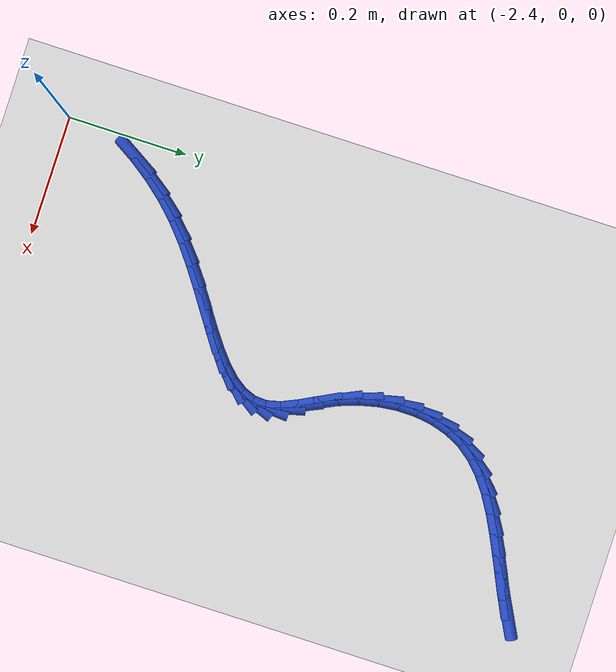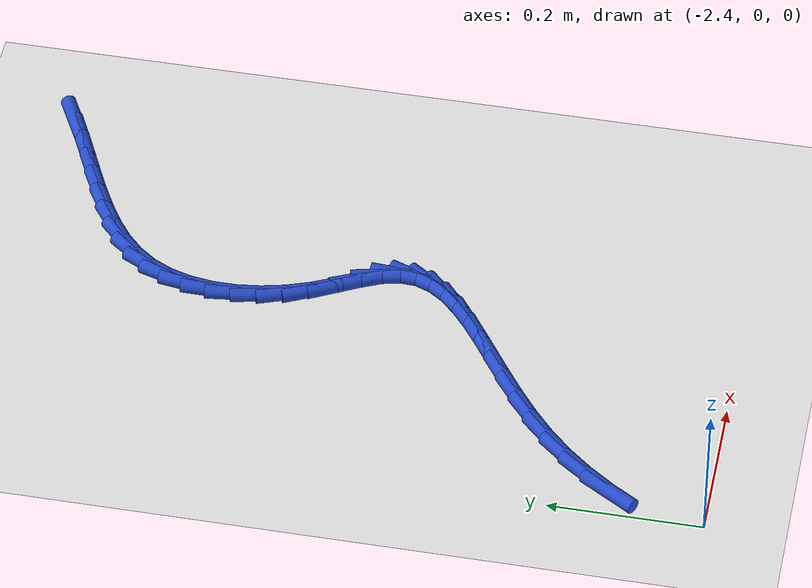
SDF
<sdf version="1.6">
 <world name="default">
  <model name="ground_plane">
   <static>1</static>
   <link name="link">
    <collision name="collision">
     <geometry><plane><normal>0 0 1</normal><size>100 100</size></plane></geometry>
     <surface><friction><ode><mu>100</mu><mu2>50</mu2></ode></friction></surface>
    </collision>
    <visual name="visual">
     <cast_shadows>0</cast_shadows>
     <geometry><plane><normal>0 0 1</normal><size>100 100</size></plane></geometry>
     <material>
      <script><uri>file://media/materials/scripts/gazebo.material</uri><name>Gazebo/WhiteGlow</name></script>
     </material>
    </visual>
   </link>
  </model>
  <model name="line">
   <link name="link_111">
    <pose>-1.8490334474256829 0.9260834770251191 0.01 0 1.57 0.48151150266954423</pose>
    <collision name="collision">
     <geometry><cylinder><radius>0.01</radius><length>0.08</length></cylinder></geometry>
    </collision>
    <visual name="visual">
     <material>
      <script><name>Gazebo/Blue</name><uri>file://media/materials/scripts/gazebo.material</uri></script>
     </material>
     <geometry><cylinder><radius>0.01</radius><length>0.08</length></cylinder></geometry>
    </visual>
   </link>
   <link name="link_112">
    <pose>-1.8782226999658391 0.9108311137869755 0.01 0 1.57 0.4482046436294923</pose>
    <collision name="collision">
     <geometry><cylinder><radius>0.01</radius><length>0.08</length></cylinder></geometry>
    </collision>
    <visual name="visual">
     <material>
      <script><name>Gazebo/Blue</name><uri>file://media/materials/scripts/gazebo.material</uri></script>
     </material>
     <geometry><cylinder><radius>0.01</radius><length>0.08</length></cylinder></geometry>
    </visual>
   </link>
   <link name="link_113">
    <pose>-1.908630862797491 0.8962095708768517 0.01 0 1.57 0.43828682693135596</pose>
    <collision name="collision">
     <geometry><cylinder><radius>0.01</radius><length>0.08</length></cylinder></geometry>
    </collision>
    <visual name="visual">
     <material>
      <script><name>Gazebo/Blue</name><uri>file://media/materials/scripts/gazebo.material</uri></script>
     </material>
     <geometry><cylinder><radius>0.01</radius><length>0.08</length></cylinder></geometry>
    </visual>
   </link>
   <link name="link_114">
    <pose>-1.9395008963547484 0.8817411151971165 0.01 0 1.57 0.4506298459979865</pose>
    <collision name="collision">
     <geometry><cylinder><radius>0.01</radius><length>0.08</length></cylinder></geometry>
    </collision>
    <visual name="visual">
     <material>
      <script><name>Gazebo/Blue</name><uri>file://media/materials/scripts/gazebo.material</uri></script>
     </material>
     <geometry><cylinder><radius>0.01</radius><length>0.08</length></cylinder></geometry>
    </visual>
   </link>
   <link name="link_115">
    <pose>-1.9700757610717194 0.8669480136501375 0.01 0 1.57 0.4859949999280427</pose>
    <collision name="collision">
     <geometry><cylinder><radius>0.01</radius><length>0.08</length></cylinder></geometry>
    </collision>
    <visual name="visual">
     <material>
      <script><name>Gazebo/Blue</name><uri>file://media/materials/scripts/gazebo.material</uri></script>
     </material>
     <geometry><cylinder><radius>0.01</radius><length>0.08</length></cylinder></geometry>
    </visual>
   </link>
   <link name="link_116">
    <pose>-1.999598417382515 0.8513525331382827 0.01 0 1.57 0.5469615754901251</pose>
    <collision name="collision">
     <geometry><cylinder><radius>0.01</radius><length>0.08</length></cylinder></geometry>
    </collision>
    <visual name="visual">
     <material>
      <script><name>Gazebo/Blue</name><uri>file://media/materials/scripts/gazebo.material</uri></script>
     </material>
     <geometry><cylinder><radius>0.01</radius><length>0.08</length></cylinder></geometry>
    </visual>
   </link>
   <link name="link_117">
    <pose>-2.027311825721245 0.8344769405639201 0.01 0 1.57 0.6377013243452267</pose>
    <collision name="collision">
     <geometry><cylinder><radius>0.01</radius><length>0.08</length></cylinder></geometry>
    </collision>
    <visual name="visual">
     <material>
      <script><name>Gazebo/Blue</name><uri>file://media/materials/scripts/gazebo.material</uri></script>
     </material>
     <geometry><cylinder><radius>0.01</radius><length>0.08</length></cylinder></geometry>
    </visual>
   </link>
   <link name="link_118">
    <pose>-2.0524589465220178 0.815843502829418 0.01 0 1.57 0.7630379911833638</pose>
    <collision name="collision">
     <geometry><cylinder><radius>0.01</radius><length>0.08</length></cylinder></geometry>
    </collision>
    <visual name="visual">
     <material>
      <script><name>Gazebo/Blue</name><uri>file://media/materials/scripts/gazebo.material</uri></script>
     </material>
     <geometry><cylinder><radius>0.01</radius><length>0.08</length></cylinder></geometry>
    </visual>
   </link>
   <link name="link_119">
    <pose>-2.0742827402189428 0.7949744868371441 0.01 0 1.57 0.9257145189324637</pose>
    <collision name="collision">
     <geometry><cylinder><radius>0.01</radius><length>0.08</length></cylinder></geometry>
    </collision>
    <visual name="visual">
     <material>
      <script><name>Gazebo/Blue</name><uri>file://media/materials/scripts/gazebo.material</uri></script>
     </material>
     <geometry><cylinder><radius>0.01</radius><length>0.08</length></cylinder></geometry>
    </visual>
   </link>
   <link name="link_120">
    <pose>-2.092027031173962 0.7713931806111358 0.01 0 1.57 1.1094860443855221</pose>
    <collision name="collision">
     <geometry><cylinder><radius>0.01</radius><length>0.08</length></cylinder></geometry>
    </collision>
    <visual name="visual">
     <material>
      <script><name>Gazebo/Blue</name><uri>file://media/materials/scripts/gazebo.material</uri></script>
     </material>
     <geometry><cylinder><radius>0.01</radius><length>0.08</length></cylinder></geometry>
    </visual>
   </link>
   <link name="link_121">
    <pose>-2.105186612143622 0.7449195048994814 0.01 0 1.57 1.278851653986016</pose>
    <collision name="collision">
     <geometry><cylinder><radius>0.01</radius><length>0.08</length></cylinder></geometry>
    </collision>
    <visual name="visual">
     <material>
      <script><name>Gazebo/Blue</name><uri>file://media/materials/scripts/gazebo.material</uri></script>
     </material>
     <geometry><cylinder><radius>0.01</radius><length>0.08</length></cylinder></geometry>
    </visual>
   </link>
   <link name="link_122">
    <pose>-2.1138538847615154 0.7160797257627656 0.01 0 1.57 1.4293383970736728</pose>
    <collision name="collision">
     <geometry><cylinder><radius>0.01</radius><length>0.08</length></cylinder></geometry>
    </collision>
    <visual name="visual">
     <material>
      <script><name>Gazebo/Blue</name><uri>file://media/materials/scripts/gazebo.material</uri></script>
     </material>
     <geometry><cylinder><radius>0.01</radius><length>0.08</length></cylinder></geometry>
    </visual>
   </link>
   <link name="link_123">
    <pose>-2.1182082902788872 0.6855029859561673 0.01 0 1.57 1.5638220749465666</pose>
    <collision name="collision">
     <geometry><cylinder><radius>0.01</radius><length>0.08</length></cylinder></geometry>
    </collision>
    <visual name="visual">
     <material>
      <script><name>Gazebo/Blue</name><uri>file://media/materials/scripts/gazebo.material</uri></script>
     </material>
     <geometry><cylinder><radius>0.01</radius><length>0.08</length></cylinder></geometry>
    </visual>
   </link>
   <link name="link_124">
    <pose>-2.118429269946981 0.6538184282348641 0.01 0 1.57 -1.4552489631040697</pose>
    <collision name="collision">
     <geometry><cylinder><radius>0.01</radius><length>0.08</length></cylinder></geometry>
    </collision>
    <visual name="visual">
     <material>
      <script><name>Gazebo/Blue</name><uri>file://media/materials/scripts/gazebo.material</uri></script>
     </material>
     <geometry><cylinder><radius>0.01</radius><length>0.08</length></cylinder></geometry>
    </visual>
   </link>
   <link name="link_125">
    <pose>-2.114696265017042 0.6216551953540341 0.01 0 1.57 -1.340441824020484</pose>
    <collision name="collision">
     <geometry><cylinder><radius>0.01</radius><length>0.08</length></cylinder></geometry>
    </collision>
    <visual name="visual">
     <material>
      <script><name>Gazebo/Blue</name><uri>file://media/materials/scripts/gazebo.material</uri></script>
     </material>
     <geometry><cylinder><radius>0.01</radius><length>0.08</length></cylinder></geometry>
    </visual>
   </link>
   <link name="link_126">
    <pose>-2.1071887167403127 0.589642430068855 0.01 0 1.57 -1.229251084256565</pose>
    <collision name="collision">
     <geometry><cylinder><radius>0.01</radius><length>0.08</length></cylinder></geometry>
    </collision>
    <visual name="visual">
     <material>
      <script><name>Gazebo/Blue</name><uri>file://media/materials/scripts/gazebo.material</uri></script>
     </material>
     <geometry><cylinder><radius>0.01</radius><length>0.08</length></cylinder></geometry>
    </visual>
   </link>
   <link name="link_127">
    <pose>-2.096086066368039 0.5584092751345054 0.01 0 1.57 -1.128511370745045</pose>
    <collision name="collision">
     <geometry><cylinder><radius>0.01</radius><length>0.08</length></cylinder></geometry>
    </collision>
    <visual name="visual">
     <material>
      <script><name>Gazebo/Blue</name><uri>file://media/materials/scripts/gazebo.material</uri></script>
     </material>
     <geometry><cylinder><radius>0.01</radius><length>0.08</length></cylinder></geometry>
    </visual>
   </link>
   <link name="link_128">
    <pose>-2.081936029363851 0.5285300808560853 0.01 0 1.57 -1.0928131011696</pose>
    <collision name="collision">
     <geometry><cylinder><radius>0.01</radius><length>0.08</length></cylinder></geometry>
    </collision>
    <visual name="visual">
     <material>
      <script><name>Gazebo/Blue</name><uri>file://media/materials/scripts/gazebo.material</uri></script>
     </material>
     <geometry><cylinder><radius>0.01</radius><length>0.08</length></cylinder></geometry>
    </visual>
   </link>
   <link name="link_129">
    <pose>-2.067300801605593 0.5002794797908429 0.01 0 1.57 -1.1488639498976205</pose>
    <collision name="collision">
     <geometry><cylinder><radius>0.01</radius><length>0.08</length></cylinder></geometry>
    </collision>
    <visual name="visual">
     <material>
      <script><name>Gazebo/Blue</name><uri>file://media/materials/scripts/gazebo.material</uri></script>
     </material>
     <geometry><cylinder><radius>0.01</radius><length>0.08</length></cylinder></geometry>
    </visual>
   </link>
   <link name="link_130">
    <pose>-2.0554278974851634 0.4738301416672256 0.01 0 1.57 -1.3337902327193936</pose>
    <collision name="collision">
     <geometry><cylinder><radius>0.01</radius><length>0.08</length></cylinder></geometry>
    </collision>
    <visual name="visual">
     <material>
      <script><name>Gazebo/Blue</name><uri>file://media/materials/scripts/gazebo.material</uri></script>
     </material>
     <geometry><cylinder><radius>0.01</radius><length>0.08</length></cylinder></geometry>
    </visual>
   </link>
   <link name="link_131">
    <pose>-2.0495142152747725 0.4493474895046636 0.01 0 1.57 1.5052333201895407</pose>
    <collision name="collision">
     <geometry><cylinder><radius>0.01</radius><length>0.08</length></cylinder></geometry>
    </collision>
    <visual name="visual">
     <material>
      <script><name>Gazebo/Blue</name><uri>file://media/materials/scripts/gazebo.material</uri></script>
     </material>
     <geometry><cylinder><radius>0.01</radius><length>0.08</length></cylinder></geometry>
    </visual>
   </link>
   <link name="link_132">
    <pose>-2.0509978448219695 0.4267508573987439 0.01 0 1.57 1.2016922943904131</pose>
    <collision name="collision">
     <geometry><cylinder><radius>0.01</radius><length>0.08</length></cylinder></geometry>
    </collision>
    <visual name="visual">
     <material>
      <script><name>Gazebo/Blue</name><uri>file://media/materials/scripts/gazebo.material</uri></script>
     </material>
     <geometry><cylinder><radius>0.01</radius><length>0.08</length></cylinder></geometry>
    </visual>
   </link>
   <link name="link_133">
    <pose>-2.059157469899213 0.405657439706744 0.01 0 1.57 0.9604777253914132</pose>
    <collision name="collision">
     <geometry><cylinder><radius>0.01</radius><length>0.08</length></cylinder></geometry>
    </collision>
    <visual name="visual">
     <material>
      <script><name>Gazebo/Blue</name><uri>file://media/materials/scripts/gazebo.material</uri></script>
     </material>
     <geometry><cylinder><radius>0.01</radius><length>0.08</length></cylinder></geometry>
    </visual>
   </link>
   <link name="link_134">
    <pose>-2.0731394094778612 0.38566591057020916 0.01 0 1.57 0.794299070715745</pose>
    <collision name="collision">
     <geometry><cylinder><radius>0.01</radius><length>0.08</length></cylinder></geometry>
    </collision>
    <visual name="visual">
     <material>
      <script><name>Gazebo/Blue</name><uri>file://media/materials/scripts/gazebo.material</uri></script>
     </material>
     <geometry><cylinder><radius>0.01</radius><length>0.08</length></cylinder></geometry>
    </visual>
   </link>
   <link name="link_135">
    <pose>-2.0920899825292687 0.3663749441306838 0.01 0 1.57 0.6888363124036309</pose>
    <collision name="collision">
     <geometry><cylinder><radius>0.01</radius><length>0.08</length></cylinder></geometry>
    </collision>
    <visual name="visual">
     <material>
      <script><name>Gazebo/Blue</name><uri>file://media/materials/scripts/gazebo.material</uri></script>
     </material>
     <geometry><cylinder><radius>0.01</radius><length>0.08</length></cylinder></geometry>
    </visual>
   </link>
   <link name="link_136">
    <pose>-2.115155508024791 0.34738321452971316 0.01 0 1.57 0.6274797355169645</pose>
    <collision name="collision">
     <geometry><cylinder><radius>0.01</radius><length>0.08</length></cylinder></geometry>
    </collision>
    <visual name="visual">
     <material>
      <script><name>Gazebo/Blue</name><uri>file://media/materials/scripts/gazebo.material</uri></script>
     </material>
     <geometry><cylinder><radius>0.01</radius><length>0.08</length></cylinder></geometry>
    </visual>
   </link>
   <link name="link_137">
    <pose>-2.141482304935783 0.328289395908842 0.01 0 1.57 0.5985520599988082</pose>
    <collision name="collision">
     <geometry><cylinder><radius>0.01</radius><length>0.08</length></cylinder></geometry>
    </collision>
    <visual name="visual">
     <material>
      <script><name>Gazebo/Blue</name><uri>file://media/materials/scripts/gazebo.material</uri></script>
     </material>
     <geometry><cylinder><radius>0.01</radius><length>0.08</length></cylinder></geometry>
    </visual>
   </link>
   <link name="link_138">
    <pose>-2.1702166922336015 0.30869216240961506 0.01 0 1.57 0.5950498637066574</pose>
    <collision name="collision">
     <geometry><cylinder><radius>0.01</radius><length>0.08</length></cylinder></geometry>
    </collision>
    <visual name="visual">
     <material>
      <script><name>Gazebo/Blue</name><uri>file://media/materials/scripts/gazebo.material</uri></script>
     </material>
     <geometry><cylinder><radius>0.01</radius><length>0.08</length></cylinder></geometry>
    </visual>
   </link>
   <link name="link_139">
    <pose>-2.200504988889601 0.2881901881735771 0.01 0 1.57 0.6132354276226906</pose>
    <collision name="collision">
     <geometry><cylinder><radius>0.01</radius><length>0.08</length></cylinder></geometry>
    </collision>
    <visual name="visual">
     <material>
      <script><name>Gazebo/Blue</name><uri>file://media/materials/scripts/gazebo.material</uri></script>
     </material>
     <geometry><cylinder><radius>0.01</radius><length>0.08</length></cylinder></geometry>
    </visual>
   </link>
   <link name="link_140">
    <pose>-2.2314935138751397 0.26638214734227283 0.01 0 1.57 0.6515289092297561</pose>
    <collision name="collision">
     <geometry><cylinder><radius>0.01</radius><length>0.08</length></cylinder></geometry>
    </collision>
    <visual name="visual">
     <material>
      <script><name>Gazebo/Blue</name><uri>file://media/materials/scripts/gazebo.material</uri></script>
     </material>
     <geometry><cylinder><radius>0.01</radius><length>0.08</length></cylinder></geometry>
    </visual>
   </link>
   <link name="link_141">
    <pose>-2.2623285861615687 0.24286671405724733 0.01 0 1.57 0.7097335406590085</pose>
    <collision name="collision">
     <geometry><cylinder><radius>0.01</radius><length>0.08</length></cylinder></geometry>
    </collision>
    <visual name="visual">
     <material>
      <script><name>Gazebo/Blue</name><uri>file://media/materials/scripts/gazebo.material</uri></script>
     </material>
     <geometry><cylinder><radius>0.01</radius><length>0.08</length></cylinder></geometry>
    </visual>
   </link>
   <link name="link_142">
    <pose>-2.292156524720248 0.21724256246004556 0.01 0 1.57 0.7876951107366613</pose>
    <collision name="collision">
     <geometry><cylinder><radius>0.01</radius><length>0.08</length></cylinder></geometry>
    </collision>
    <visual name="visual">
     <material>
      <script><name>Gazebo/Blue</name><uri>file://media/materials/scripts/gazebo.material</uri></script>
     </material>
     <geometry><cylinder><radius>0.01</radius><length>0.08</length></cylinder></geometry>
    </visual>
   </link>
   <link name="link_143">
    <pose>-2.320144676961856 0.18912553935857776 0.01 0 1.57 0.872170325247262</pose>
    <collision name="collision">
     <geometry><cylinder><radius>0.01</radius><length>0.08</length></cylinder></geometry>
    </collision>
    <visual name="visual">
     <material>
      <script><name>Gazebo/Blue</name><uri>file://media/materials/scripts/gazebo.material</uri></script>
     </material>
     <geometry><cylinder><radius>0.01</radius><length>0.08</length></cylinder></geometry>
    </visual>
   </link>
   <link name="link_144">
    <pose>-2.3458859706112105 0.15847903750238188 0.01 0 1.57 0.9507386666117916</pose>
    <collision name="collision">
     <geometry><cylinder><radius>0.01</radius><length>0.08</length></cylinder></geometry>
    </collision>
    <visual name="visual">
     <material>
      <script><name>Gazebo/Blue</name><uri>file://media/materials/scripts/gazebo.material</uri></script>
     </material>
     <geometry><cylinder><radius>0.01</radius><length>0.08</length></cylinder></geometry>
    </visual>
   </link>
   <link name="link_145">
    <pose>-2.3693689513618508 0.12558952713047858 0.01 0 1.57 1.0234825103400353</pose>
    <collision name="collision">
     <geometry><cylinder><radius>0.01</radius><length>0.08</length></cylinder></geometry>
    </collision>
    <visual name="visual">
     <material>
      <script><name>Gazebo/Blue</name><uri>file://media/materials/scripts/gazebo.material</uri></script>
     </material>
     <geometry><cylinder><radius>0.01</radius><length>0.08</length></cylinder></geometry>
    </visual>
   </link>
  </model>
 </world>
</sdf>
